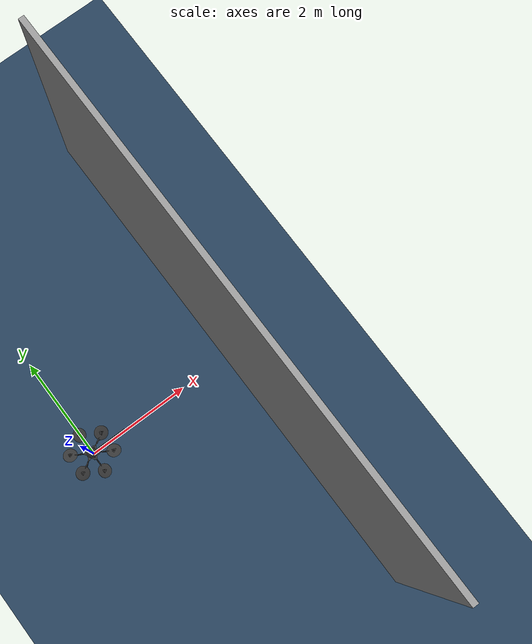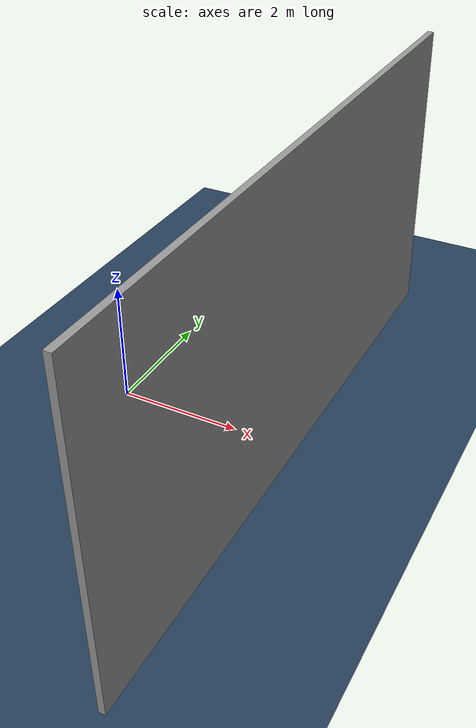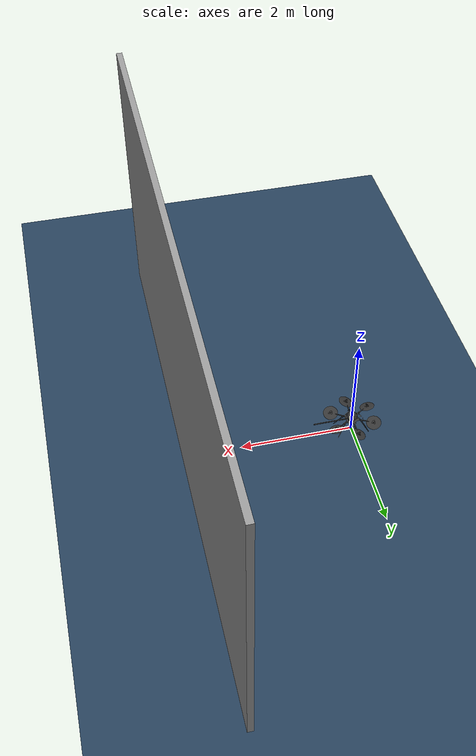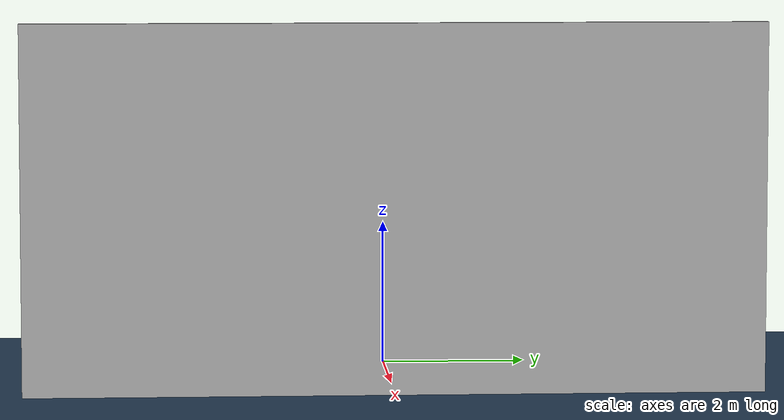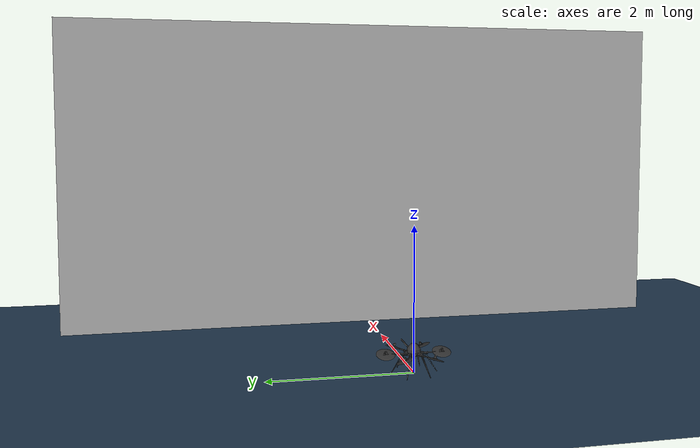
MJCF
<mujoco model="physical_interaction">
    <include file="../fiberthex/fiberthex.xml"/>
    <statistic center="0 0 0.1" extent="5" meansize=".05"/>

    <visual>
        <global azimuth="-10" elevation="-10" ellipsoidinertia="true" offwidth="1920" offheight="1080"/>
        <headlight ambient="0.3 0.3 0.3" diffuse="0.6 0.6 0.6" specular="0 0 0"/>
        <rgba haze="0.15 0.25 0.35 1"/>
        <scale forcewidth="0.2" contactwidth="0.5" contactheight="0.2"/>
        <map force="0.2"/>
    </visual>

    <asset>
        <texture type="skybox" builtin="gradient" rgb1="0.3 0.5 0.7" rgb2="0 0 0" width="512" height="3072"/>
        <texture type="2d" name="groundplane" builtin="checker" mark="edge" rgb1="0.2 0.3 0.4" rgb2="0.1 0.2 0.3"
          markrgb="0.8 0.8 0.8" width="300" height="300"/>
        <material name="groundplane" texture="groundplane" texuniform="true" texrepeat="5 5" reflectance="0.0"/>
        <material name="dark_grey" rgba="0.6 0.6 0.6 1"/>
    </asset>

    <worldbody>
        <light pos="0 0 1.5" dir="0.1 0 -1" directional="true"/>
        <geom name="floor" size="0 0 0.05" type="plane" material="groundplane"/>
        <geom name="Wall" pos="3 0 2.5" size="0.05 5 2.5" type="box" material="dark_grey"/>
        <camera name="scene"  pos="-2.989 1.555 1.296" xyaxes="-0.302 -0.953 -0.000 0.105 -0.033 0.994"/>
    </worldbody>

    <sensor>
        <contact name="ft_sensor" geom1="End_Effector" geom2="Wall" data="force"/>
    </sensor>

    <contact>
        <pair geom1="End_Effector" geom2="Wall" solref="0.002 1" solimp="0.99 0.99 0.001 0.5 2" friction="1 1 0.005 0.0001 0.0001"/>
    </contact>

</mujoco>

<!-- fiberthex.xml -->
<mujoco model="fiberthex">
    <compiler inertiafromgeom="false" angle="radian" eulerseq="XYZ" autolimits="true"/>
    <option gravity="0 0 -9.81" timestep="0.001" solver="Newton" cone="elliptic" impratio="10" tolerance="1e-10"/>

    <asset>
        <material name="grey" rgba="0.2 0.2 0.2 1"/>
        <material name="white" rgba="1 1 1 1"/>
        <material name="red" rgba="1 0 0 1"/>

        <material name="yellow" rgba="1 1 0 1"/>
        <material name="pink" rgba="1 0 0.6 1"/>
        <material name="purple" rgba="0.4 0 1 1"/>
        <material name="green" rgba="0 0.6 0.2 1"/>
        <material name="orange" rgba="1 0.4 0 1"/>
        <material name="blue" rgba="0 0 1 1"/>

        <mesh name="base" file="assets/base.obj" scale="0.001 0.001 0.001"/>

    </asset>

    <worldbody>
        <body name="robot" pos="0 0 0.27175" euler="0 0 0.523598776">
            <joint type="free"/>
            <inertial pos="0 0 0" mass="2" diaginertia="0.06185585085 0.46467853407 0.47162119244"/>
            <geom type="mesh" mesh="base" material="grey"/>
            <geom name="arm" type="cylinder" size="0.01 0.3475" pos="0.300943827 -0.17375 0.0" euler="-2.61799 1.5708 0" material = "grey"/>
            <geom name="End_Effector" type="sphere" size="0.01" pos="0.60188765563 -0.3475 0.0" euler="-2.61799 1.5708 0" material = "grey"/>
            <geom name="prop1" type="ellipsoid" size=".13 .13 .01" pos="0.38998 0 0" euler="0.34906585 0 0" material="grey"/>
            <geom name="prop2" type="ellipsoid" size=".13 .13 .01" pos="0.195 0.3377 0" euler="-0.34906585 0 1.0472" material="grey"/>
            <geom name="prop3" type="ellipsoid" size=".13 .13 .01" pos="-0.195 0.3377 0" euler="0.34906585 0 2.0944" material="grey"/>
            <geom name="prop4" type="ellipsoid" size=".13 .13 .01" pos="-0.38998 0 0" euler="0.34906585 0 0" material="grey"/>
            <geom name="prop5" type="ellipsoid" size=".13 .13 .01" pos="-0.195 -0.3377 0" euler="-0.34906585 0 1.0472" material="grey"/>
            <geom name="prop6" type="ellipsoid" size=".13 .13 .01" pos="0.195 -0.3377 0" euler="0.34906585 0 2.0944" material="grey"/>
            <site name="thrust1" pos="0.38998 0 0" euler="0.34906585 0 0"/>
            <site name="thrust2" pos="0.195 0.3377 0" euler="-0.34906585 0 1.0472"/>
            <site name="thrust3" pos="-0.195 0.3377 0" euler="0.34906585 0 2.0944"/>
            <site name="thrust4" pos="-0.38998 0 0" euler="0.34906585 0 0"/>
            <site name="thrust5" pos="-0.195 -0.3377 0" euler="-0.34906585 0 1.0472"/>
            <site name="thrust6" pos="0.195 -0.3377 0" euler="0.34906585 0 2.0944"/>
            <site name="CoM"/>
            <site name="End_Effector_Sensor" pos="0.60188765563 -0.3475 0.0" euler="0 0 -0.523598776"/>
            <camera name="parallel_cam" mode="targetbody" target='robot' pos="-1.5 -1.0 0.5" euler="0 0 0"/>
        </body>
    </worldbody>

    <actuator>

        <motor name="Force_X" site="CoM" ctrlrange="-30 30" gear="1 0 0 0 0 0" group="1"/>
        <motor name="Force_Y" site="CoM" ctrlrange="-30 30" gear="0 1 0 0 0 0" group="1"/>
        <motor name="Force_Z" site="CoM" ctrlrange="-30 30" gear="0 0 1 0 0 0" group="1"/>
        <motor name="Torque_X" site="CoM" ctrlrange="-30 30" gear="0 0 0 1 0 0" group="1"/>
        <motor name="Torque_Y" site="CoM" ctrlrange="-30 30" gear="0 0 0 0 1 0" group="1"/>
        <motor name="Torque_Z" site="CoM" ctrlrange="-30 30" gear="0 0 0 0 0 1" group="1"/>

    </actuator>

    <sensor>
        <!--robot parameters-->
        <!--Linear Parameters-->
        <framepos name="robot_pos" objtype="site" objname="CoM"/>
        <framelinvel name="robot_vel" objtype="site" objname="CoM"/>

        <!--Rotational Parameters-->
        <framequat name="robot_ori" objtype="site" objname="CoM"/>
        <gyro name="robot_Angvel" site='CoM'/>

        <!--End_Effector parameters-->
        <framepos name="EE_pos" objtype="site" objname="End_Effector_Sensor"/>

        <!--End_Effector Contact-->
        <!--Properller Contact-->

    </sensor>
</mujoco>
